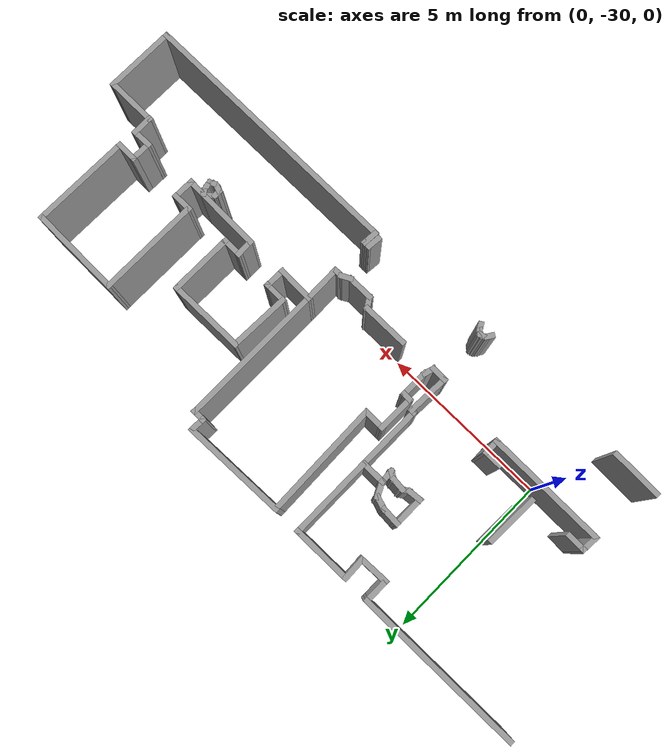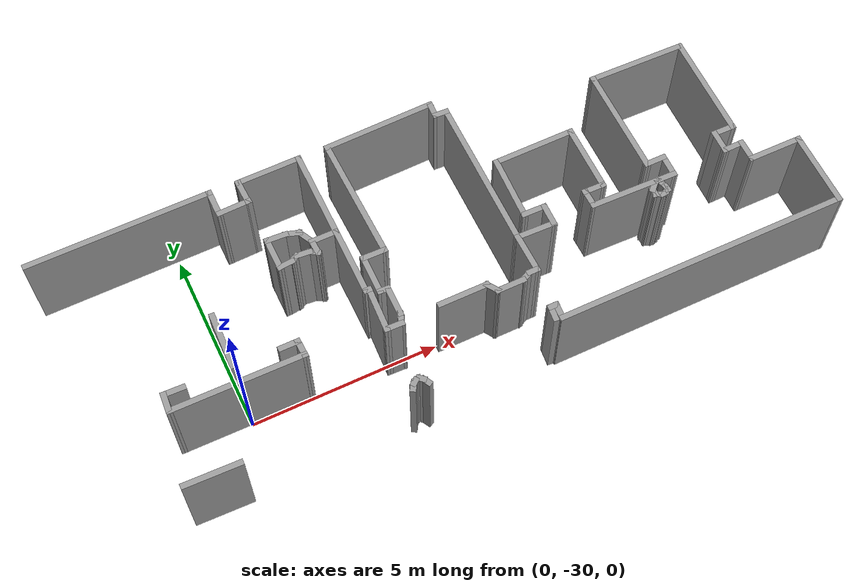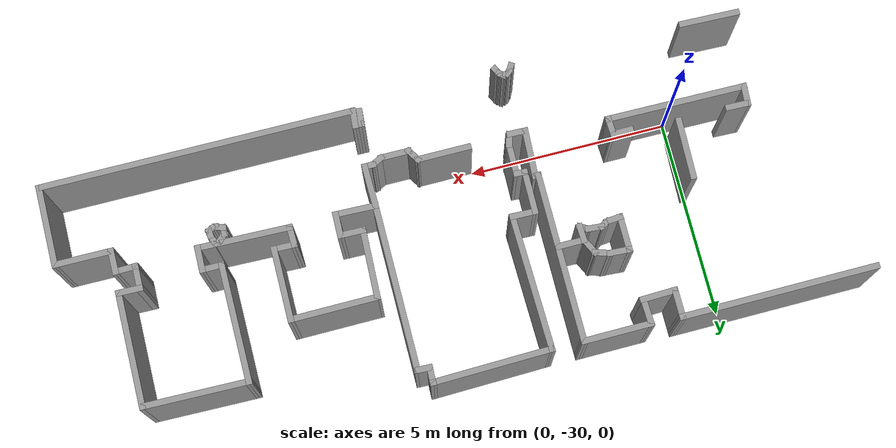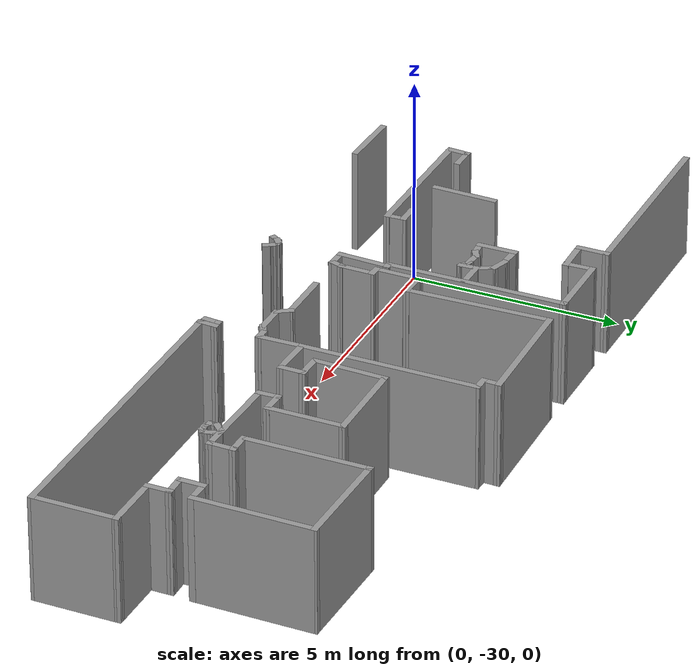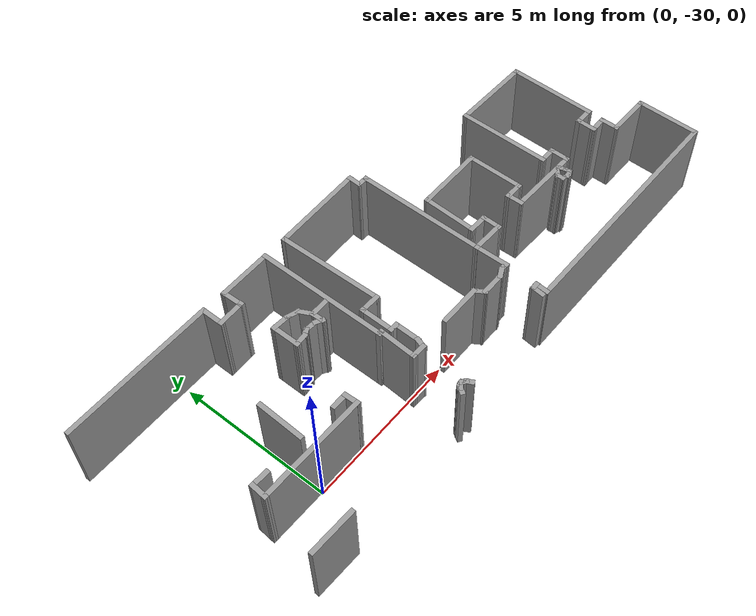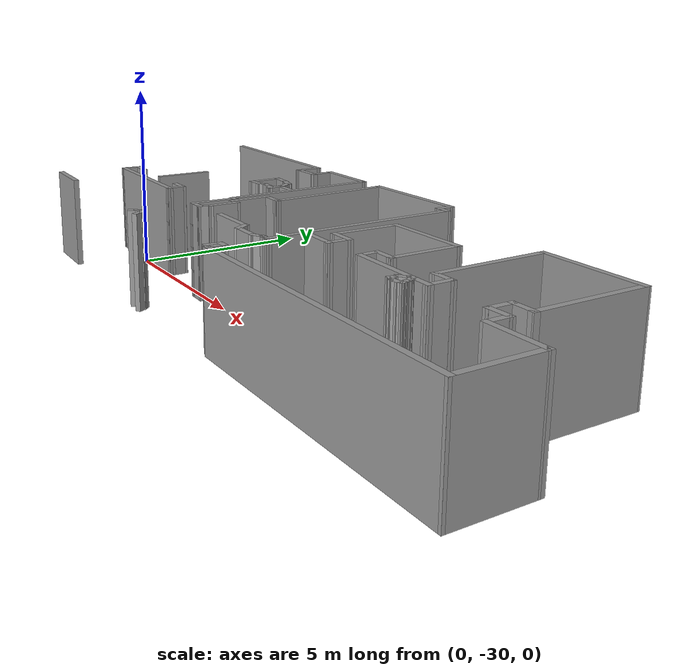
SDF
<sdf version="1.4">
 <model name="3ne_real">
  <pose>-14.229 -33.4428 0 0 -0 0</pose>
  <link name="Wall_111">
   <collision name="Wall_111_Collision">
    <geometry><box><size>0.471872 0.15 2.5</size></box></geometry>
    <pose>0 0 1.25 0 -0 0</pose>
   </collision>
   <visual name="Wall_111_Visual">
    <pose>0 0 1.25 0 -0 0</pose>
    <geometry><box><size>0.471872 0.15 2.5</size></box></geometry>
    <material>
     <script><uri>file://media/materials/scripts/gazebo.material</uri><name>Gazebo/Grey</name></script>
     <ambient>1 1 1 1</ambient>
    </material>
    <meta><layer>0</layer></meta>
   </visual>
   <pose>21.6685 1.9825 0 0 -0 1.47519</pose>
  </link>
  <link name="Wall_112">
   <collision name="Wall_112_Collision">
    <geometry><box><size>0.299526 0.15 2.5</size></box></geometry>
    <pose>0 0 1.25 0 -0 0</pose>
   </collision>
   <visual name="Wall_112_Visual">
    <pose>0 0 1.25 0 -0 0</pose>
    <geometry><box><size>0.299526 0.15 2.5</size></box></geometry>
    <material>
     <script><uri>file://media/materials/scripts/gazebo.material</uri><name>Gazebo/Grey</name></script>
     <ambient>1 1 1 1</ambient>
    </material>
    <meta><layer>0</layer></meta>
   </visual>
   <pose>21.7586 2.1423 0 0 -0 0</pose>
  </link>
  <link name="Wall_113">
   <collision name="Wall_113_Collision">
    <geometry><box><size>0.512541 0.15 2.5</size></box></geometry>
    <pose>0 0 1.25 0 -0 0</pose>
   </collision>
   <visual name="Wall_113_Visual">
    <pose>0 0 1.25 0 -0 0</pose>
    <geometry><box><size>0.512541 0.15 2.5</size></box></geometry>
    <material>
     <script><uri>file://media/materials/scripts/gazebo.material</uri><name>Gazebo/Grey</name></script>
     <ambient>1 1 1 1</ambient>
    </material>
    <meta><layer>0</layer></meta>
   </visual>
   <pose>21.8197 1.96154 0 0 -0 -1.64603</pose>
  </link>
  <link name="Wall_114">
   <collision name="Wall_114_Collision">
    <geometry><box><size>7.89707 0.15 2.5</size></box></geometry>
    <pose>0 0 1.25 0 -0 0</pose>
   </collision>
   <visual name="Wall_114_Visual">
    <pose>0 0 1.25 0 -0 0</pose>
    <geometry><box><size>7.89707 0.15 2.5</size></box></geometry>
    <material>
     <script><uri>file://media/materials/scripts/gazebo.material</uri><name>Gazebo/Grey</name></script>
     <ambient>1 1 1 1</ambient>
    </material>
    <meta><layer>0</layer></meta>
   </visual>
   <pose>25.6895 1.75849 0 0 -0 -0.003204</pose>
  </link>
  <link name="Wall_116">
   <collision name="Wall_116_Collision">
    <geometry><box><size>2.08803 0.15 2.5</size></box></geometry>
    <pose>0 0 1.25 0 -0 0</pose>
   </collision>
   <visual name="Wall_116_Visual">
    <pose>0 0 1.25 0 -0 0</pose>
    <geometry><box><size>2.08803 0.15 2.5</size></box></geometry>
    <material>
     <script><uri>file://media/materials/scripts/gazebo.material</uri><name>Gazebo/Grey</name></script>
     <ambient>1 1 1 1</ambient>
    </material>
    <meta><layer>0</layer></meta>
   </visual>
   <pose>29.5729 2.71504 0 0 -0 1.56059</pose>
  </link>
  <link name="Wall_117">
   <collision name="Wall_117_Collision">
    <geometry><box><size>1.51449 0.15 2.5</size></box></geometry>
    <pose>0 0 1.25 0 -0 0</pose>
   </collision>
   <visual name="Wall_117_Visual">
    <pose>0 0 1.25 0 -0 0</pose>
    <geometry><box><size>1.51449 0.15 2.5</size></box></geometry>
    <material>
     <script><uri>file://media/materials/scripts/gazebo.material</uri><name>Gazebo/Grey</name></script>
     <ambient>1 1 1 1</ambient>
    </material>
    <meta><layer>0</layer></meta>
   </visual>
   <pose>28.9005 3.68895 0 0 -0 3.13435</pose>
  </link>
  <link name="Wall_118">
   <collision name="Wall_118_Collision">
    <geometry><box><size>0.664144 0.15 2.5</size></box></geometry>
    <pose>0 0 1.25 0 -0 0</pose>
   </collision>
   <visual name="Wall_118_Visual">
    <pose>0 0 1.25 0 -0 0</pose>
    <geometry><box><size>0.664144 0.15 2.5</size></box></geometry>
    <material>
     <script><uri>file://media/materials/scripts/gazebo.material</uri><name>Gazebo/Grey</name></script>
     <ambient>1 1 1 1</ambient>
    </material>
    <meta><layer>0</layer></meta>
   </visual>
   <pose>28.2183 3.95097 0 0 -0 1.5708</pose>
  </link>
  <link name="Wall_120">
   <collision name="Wall_120_Collision">
    <geometry><box><size>0.634583 0.15 2.5</size></box></geometry>
    <pose>0 0 1.25 0 -0 0</pose>
   </collision>
   <visual name="Wall_120_Visual">
    <pose>0 0 1.25 0 -0 0</pose>
    <geometry><box><size>0.634583 0.15 2.5</size></box></geometry>
    <material>
     <script><uri>file://media/materials/scripts/gazebo.material</uri><name>Gazebo/Grey</name></script>
     <ambient>1 1 1 1</ambient>
    </material>
    <meta><layer>0</layer></meta>
   </visual>
   <pose>27.9761 4.2031 0 0 -0 -3.12119</pose>
  </link>
  <link name="Wall_121">
   <collision name="Wall_121_Collision">
    <geometry><box><size>0.694166 0.15 2.5</size></box></geometry>
    <pose>0 0 1.25 0 -0 0</pose>
   </collision>
   <visual name="Wall_121_Visual">
    <pose>0 0 1.25 0 -0 0</pose>
    <geometry><box><size>0.694166 0.15 2.5</size></box></geometry>
    <material>
     <script><uri>file://media/materials/scripts/gazebo.material</uri><name>Gazebo/Grey</name></script>
     <ambient>1 1 1 1</ambient>
    </material>
    <meta><layer>0</layer></meta>
   </visual>
   <pose>27.7388 4.47005 0 0 -0 1.55262</pose>
  </link>
  <link name="Wall_122">
   <collision name="Wall_122_Collision">
    <geometry><box><size>0.664999 0.15 2.5</size></box></geometry>
    <pose>0 0 1.25 0 -0 0</pose>
   </collision>
   <visual name="Wall_122_Visual">
    <pose>0 0 1.25 0 -0 0</pose>
    <geometry><box><size>0.664999 0.15 2.5</size></box></geometry>
    <material>
     <script><uri>file://media/materials/scripts/gazebo.material</uri><name>Gazebo/Grey</name></script>
     <ambient>1 1 1 1</ambient>
    </material>
    <meta><layer>0</layer></meta>
   </visual>
   <pose>28.0008 4.73701 0 0 -0 -0.019228</pose>
  </link>
  <link name="Wall_124">
   <collision name="Wall_124_Collision">
    <geometry><box><size>2.92899 0.15 2.5</size></box></geometry>
    <pose>0 0 1.25 0 -0 0</pose>
   </collision>
   <visual name="Wall_124_Visual">
    <pose>0 0 1.25 0 -0 0</pose>
    <geometry><box><size>2.92899 0.15 2.5</size></box></geometry>
    <material>
     <script><uri>file://media/materials/scripts/gazebo.material</uri><name>Gazebo/Grey</name></script>
     <ambient>1 1 1 1</ambient>
    </material>
    <meta><layer>0</layer></meta>
   </visual>
   <pose>28.2776 6.12125 0 0 -0 1.55656</pose>
  </link>
  <link name="Wall_125">
   <collision name="Wall_125_Collision">
    <geometry><box><size>2.70125 0.15 2.5</size></box></geometry>
    <pose>0 0 1.25 0 -0 0</pose>
   </collision>
   <visual name="Wall_125_Visual">
    <pose>0 0 1.25 0 -0 0</pose>
    <geometry><box><size>2.70125 0.15 2.5</size></box></geometry>
    <material>
     <script><uri>file://media/materials/scripts/gazebo.material</uri><name>Gazebo/Grey</name></script>
     <ambient>1 1 1 1</ambient>
    </material>
    <meta><layer>0</layer></meta>
   </visual>
   <pose>27.0219 7.53514 0 0 -0 3.12222</pose>
  </link>
  <link name="Wall_126">
   <collision name="Wall_126_Collision">
    <geometry><box><size>3.02725 0.15 2.5</size></box></geometry>
    <pose>0 0 1.25 0 -0 0</pose>
   </collision>
   <visual name="Wall_126_Visual">
    <pose>0 0 1.25 0 -0 0</pose>
    <geometry><box><size>3.02725 0.15 2.5</size></box></geometry>
    <material>
     <script><uri>file://media/materials/scripts/gazebo.material</uri><name>Gazebo/Grey</name></script>
     <ambient>1 1 1 1</ambient>
    </material>
    <meta><layer>0</layer></meta>
   </visual>
   <pose>25.7415 6.12125 0 0 -0 -1.57423</pose>
  </link>
  <link name="Wall_127">
   <collision name="Wall_127_Collision">
    <geometry><box><size>0.624595 0.15 2.5</size></box></geometry>
    <pose>0 0 1.25 0 -0 0</pose>
   </collision>
   <visual name="Wall_127_Visual">
    <pose>0 0 1.25 0 -0 0</pose>
    <geometry><box><size>0.624595 0.15 2.5</size></box></geometry>
    <material>
     <script><uri>file://media/materials/scripts/gazebo.material</uri><name>Gazebo/Grey</name></script>
     <ambient>1 1 1 1</ambient>
    </material>
    <meta><layer>0</layer></meta>
   </visual>
   <pose>25.9739 4.68263 0 0 -0 0</pose>
  </link>
  <link name="Wall_128">
   <collision name="Wall_128_Collision">
    <geometry><box><size>0.693896 0.15 2.5</size></box></geometry>
    <pose>0 0 1.25 0 -0 0</pose>
   </collision>
   <visual name="Wall_128_Visual">
    <pose>0 0 1.25 0 -0 0</pose>
    <geometry><box><size>0.693896 0.15 2.5</size></box></geometry>
    <material>
     <script><uri>file://media/materials/scripts/gazebo.material</uri><name>Gazebo/Grey</name></script>
     <ambient>1 1 1 1</ambient>
    </material>
    <meta><layer>0</layer></meta>
   </visual>
   <pose>26.2062 4.41073 0 0 -0 -1.58898</pose>
  </link>
  <link name="Wall_129">
   <collision name="Wall_129_Collision">
    <geometry><box><size>2.39522 0.15 2.5</size></box></geometry>
    <pose>0 0 1.25 0 -0 0</pose>
   </collision>
   <visual name="Wall_129_Visual">
    <pose>0 0 1.25 0 -0 0</pose>
    <geometry><box><size>2.39522 0.15 2.5</size></box></geometry>
    <material>
     <script><uri>file://media/materials/scripts/gazebo.material</uri><name>Gazebo/Grey</name></script>
     <ambient>1 1 1 1</ambient>
    </material>
    <meta><layer>0</layer></meta>
   </visual>
   <pose>25.0791 4.16849 0 0 -0 3.11517</pose>
  </link>
  <link name="Wall_130">
   <collision name="Wall_130_Collision">
    <geometry><box><size>0.585045 0.15 2.5</size></box></geometry>
    <pose>0 0 1.25 0 -0 0</pose>
   </collision>
   <visual name="Wall_130_Visual">
    <pose>0 0 1.25 0 -0 0</pose>
    <geometry><box><size>0.585045 0.15 2.5</size></box></geometry>
    <material>
     <script><uri>file://media/materials/scripts/gazebo.material</uri><name>Gazebo/Grey</name></script>
     <ambient>1 1 1 1</ambient>
    </material>
    <meta><layer>0</layer></meta>
   </visual>
   <pose>23.9519 4.41567 0 0 -0 1.59352</pose>
  </link>
  <link name="Wall_131">
   <collision name="Wall_131_Collision">
    <geometry><box><size>0.644765 0.15 2.5</size></box></geometry>
    <pose>0 0 1.25 0 -0 0</pose>
   </collision>
   <visual name="Wall_131_Visual">
    <pose>0 0 1.25 0 -0 0</pose>
    <geometry><box><size>0.644765 0.15 2.5</size></box></geometry>
    <material>
     <script><uri>file://media/materials/scripts/gazebo.material</uri><name>Gazebo/Grey</name></script>
     <ambient>1 1 1 1</ambient>
    </material>
    <meta><layer>0</layer></meta>
   </visual>
   <pose>24.1941 4.62825 0 0 -0 -0.019997</pose>
  </link>
  <link name="Wall_132">
   <collision name="Wall_132_Collision">
    <geometry><box><size>1.9001 0.15 2.5</size></box></geometry>
    <pose>0 0 1.25 0 -0 0</pose>
   </collision>
   <visual name="Wall_132_Visual">
    <pose>0 0 1.25 0 -0 0</pose>
    <geometry><box><size>1.9001 0.15 2.5</size></box></geometry>
    <material>
     <script><uri>file://media/materials/scripts/gazebo.material</uri><name>Gazebo/Grey</name></script>
     <ambient>1 1 1 1</ambient>
    </material>
    <meta><layer>0</layer></meta>
   </visual>
   <pose>24.4463 5.49834 0 0 -0 1.56515</pose>
  </link>
  <link name="Wall_133">
   <collision name="Wall_133_Collision">
    <geometry><box><size>2.26592 0.15 2.5</size></box></geometry>
    <pose>0 0 1.25 0 -0 0</pose>
   </collision>
   <visual name="Wall_133_Visual">
    <pose>0 0 1.25 0 -0 0</pose>
    <geometry><box><size>2.26592 0.15 2.5</size></box></geometry>
    <material>
     <script><uri>file://media/materials/scripts/gazebo.material</uri><name>Gazebo/Grey</name></script>
     <ambient>1 1 1 1</ambient>
    </material>
    <meta><layer>0</layer></meta>
   </visual>
   <pose>23.3933 6.36843 0 0 -0 -3.13692</pose>
  </link>
  <link name="Wall_134">
   <collision name="Wall_134_Collision">
    <geometry><box><size>1.81214 0.15 2.5</size></box></geometry>
    <pose>0 0 1.25 0 -0 0</pose>
   </collision>
   <visual name="Wall_134_Visual">
    <pose>0 0 1.25 0 -0 0</pose>
    <geometry><box><size>1.81214 0.15 2.5</size></box></geometry>
    <material>
     <script><uri>file://media/materials/scripts/gazebo.material</uri><name>Gazebo/Grey</name></script>
     <ambient>1 1 1 1</ambient>
    </material>
    <meta><layer>0</layer></meta>
   </visual>
   <pose>22.3057 5.53295 0 0 -0 -1.6065</pose>
  </link>
  <link name="Wall_135">
   <collision name="Wall_135_Collision">
    <geometry><box><size>0.703782 0.15 2.5</size></box></geometry>
    <pose>0 0 1.25 0 -0 0</pose>
   </collision>
   <visual name="Wall_135_Visual">
    <pose>0 0 1.25 0 -0 0</pose>
    <geometry><box><size>0.703782 0.15 2.5</size></box></geometry>
    <material>
     <script><uri>file://media/materials/scripts/gazebo.material</uri><name>Gazebo/Grey</name></script>
     <ambient>1 1 1 1</ambient>
    </material>
    <meta><layer>0</layer></meta>
   </visual>
   <pose>22.5528 4.69747 0 0 -0 -0.017855</pose>
  </link>
  <link name="Wall_136">
   <collision name="Wall_136_Collision">
    <geometry><box><size>0.674125 0.15 2.5</size></box></geometry>
    <pose>0 0 1.25 0 -0 0</pose>
   </collision>
   <visual name="Wall_136_Visual">
    <pose>0 0 1.25 0 -0 0</pose>
    <geometry><box><size>0.674125 0.15 2.5</size></box></geometry>
    <material>
     <script><uri>file://media/materials/scripts/gazebo.material</uri><name>Gazebo/Grey</name></script>
     <ambient>1 1 1 1</ambient>
    </material>
    <meta><layer>0</layer></meta>
   </visual>
   <pose>22.8247 4.43051 0 0 -0 -1.58966</pose>
  </link>
  <link name="Wall_138">
   <collision name="Wall_138_Collision">
    <geometry><box><size>1.1293 0.15 2.5</size></box></geometry>
    <pose>0 0 1.25 0 -0 0</pose>
   </collision>
   <visual name="Wall_138_Visual">
    <pose>0 0 1.25 0 -0 0</pose>
    <geometry><box><size>1.1293 0.15 2.5</size></box></geometry>
    <material>
     <script><uri>file://media/materials/scripts/gazebo.material</uri><name>Gazebo/Grey</name></script>
     <ambient>1 1 1 1</ambient>
    </material>
    <meta><layer>0</layer></meta>
   </visual>
   <pose>22.3304 4.18332 0 0 -0 3.1113</pose>
  </link>
  <link name="Wall_140">
   <collision name="Wall_140_Collision">
    <geometry><box><size>0.34576 0.15 2.5</size></box></geometry>
    <pose>0 0 1.25 0 -0 0</pose>
   </collision>
   <visual name="Wall_140_Visual">
    <pose>0 0 1.25 0 -0 0</pose>
    <geometry><box><size>0.34576 0.15 2.5</size></box></geometry>
    <material>
     <script><uri>file://media/materials/scripts/gazebo.material</uri><name>Gazebo/Grey</name></script>
     <ambient>1 1 1 1</ambient>
    </material>
    <meta><layer>0</layer></meta>
   </visual>
   <pose>25.5685 4.03006 0 0 -0 -2.35619</pose>
  </link>
  <link name="Wall_141">
   <collision name="Wall_141_Collision">
    <geometry><box><size>0.308198 0.15 2.5</size></box></geometry>
    <pose>0 0 1.25 0 -0 0</pose>
   </collision>
   <visual name="Wall_141_Visual">
    <pose>0 0 1.25 0 -0 0</pose>
    <geometry><box><size>0.308198 0.15 2.5</size></box></geometry>
    <material>
     <script><uri>file://media/materials/scripts/gazebo.material</uri><name>Gazebo/Grey</name></script>
     <ambient>1 1 1 1</ambient>
    </material>
    <meta><layer>0</layer></meta>
   </visual>
   <pose>25.4993 3.88176 0 0 -0 -1.5708</pose>
  </link>
  <link name="Wall_142">
   <collision name="Wall_142_Collision">
    <geometry><box><size>0.318956 0.15 2.5</size></box></geometry>
    <pose>0 0 1.25 0 -0 0</pose>
   </collision>
   <visual name="Wall_142_Visual">
    <pose>0 0 1.25 0 -0 0</pose>
    <geometry><box><size>0.318956 0.15 2.5</size></box></geometry>
    <material>
     <script><uri>file://media/materials/scripts/gazebo.material</uri><name>Gazebo/Grey</name></script>
     <ambient>1 1 1 1</ambient>
    </material>
    <meta><layer>0</layer></meta>
   </visual>
   <pose>25.5784 3.77299 0 0 -0 -0.358771</pose>
  </link>
  <link name="Wall_143">
   <collision name="Wall_143_Collision">
    <geometry><box><size>0.239534 0.15 2.5</size></box></geometry>
    <pose>0 0 1.25 0 -0 0</pose>
   </collision>
   <visual name="Wall_143_Visual">
    <pose>0 0 1.25 0 -0 0</pose>
    <geometry><box><size>0.239534 0.15 2.5</size></box></geometry>
    <material>
     <script><uri>file://media/materials/scripts/gazebo.material</uri><name>Gazebo/Grey</name></script>
     <ambient>1 1 1 1</ambient>
    </material>
    <meta><layer>0</layer></meta>
   </visual>
   <pose>25.702 3.74828 0 0 -0 0.110657</pose>
  </link>
  <link name="Wall_144">
   <collision name="Wall_144_Collision">
    <geometry><box><size>0.260544 0.15 2.5</size></box></geometry>
    <pose>0 0 1.25 0 -0 0</pose>
   </collision>
   <visual name="Wall_144_Visual">
    <pose>0 0 1.25 0 -0 0</pose>
    <geometry><box><size>0.260544 0.15 2.5</size></box></geometry>
    <material>
     <script><uri>file://media/materials/scripts/gazebo.material</uri><name>Gazebo/Grey</name></script>
     <ambient>1 1 1 1</ambient>
    </material>
    <meta><layer>0</layer></meta>
   </visual>
   <pose>25.7959 3.77794 0 0 -0 0.463648</pose>
  </link>
  <link name="Wall_145">
   <collision name="Wall_145_Collision">
    <geometry><box><size>0.258761 0.15 2.5</size></box></geometry>
    <pose>0 0 1.25 0 -0 0</pose>
   </collision>
   <visual name="Wall_145_Visual">
    <pose>0 0 1.25 0 -0 0</pose>
    <geometry><box><size>0.258761 0.15 2.5</size></box></geometry>
    <material>
     <script><uri>file://media/materials/scripts/gazebo.material</uri><name>Gazebo/Grey</name></script>
     <ambient>1 1 1 1</ambient>
    </material>
    <meta><layer>0</layer></meta>
   </visual>
   <pose>25.8404 3.85704 0 0 -0 1.66146</pose>
  </link>
  <link name="Wall_146">
   <collision name="Wall_146_Collision">
    <geometry><box><size>0.315743 0.15 2.5</size></box></geometry>
    <pose>0 0 1.25 0 -0 0</pose>
   </collision>
   <visual name="Wall_146_Visual">
    <pose>0 0 1.25 0 -0 0</pose>
    <geometry><box><size>0.315743 0.15 2.5</size></box></geometry>
    <material>
     <script><uri>file://media/materials/scripts/gazebo.material</uri><name>Gazebo/Grey</name></script>
     <ambient>1 1 1 1</ambient>
    </material>
    <meta><layer>0</layer></meta>
   </visual>
   <pose>25.8107 3.99052 0 0 -0 1.87368</pose>
  </link>
  <link name="Wall_147">
   <collision name="Wall_147_Collision">
    <geometry><box><size>0.221299 0.15 2.5</size></box></geometry>
    <pose>0 0 1.25 0 -0 0</pose>
   </collision>
   <visual name="Wall_147_Visual">
    <pose>0 0 1.25 0 -0 0</pose>
    <geometry><box><size>0.221299 0.15 2.5</size></box></geometry>
    <material>
     <script><uri>file://media/materials/scripts/gazebo.material</uri><name>Gazebo/Grey</name></script>
     <ambient>1 1 1 1</ambient>
    </material>
    <meta><layer>0</layer></meta>
   </visual>
   <pose>25.7662 4.09928 0 0 -0 2.1588</pose>
  </link>
  <link name="Wall_149">
   <collision name="Wall_149_Collision">
    <geometry><box><size>4.24333 0.15 2.5</size></box></geometry>
    <pose>0 0 1.25 0 -0 0</pose>
   </collision>
   <visual name="Wall_149_Visual">
    <pose>0 0 1.25 0 -0 0</pose>
    <geometry><box><size>4.24333 0.15 2.5</size></box></geometry>
    <material>
     <script><uri>file://media/materials/scripts/gazebo.material</uri><name>Gazebo/Grey</name></script>
     <ambient>1 1 1 1</ambient>
    </material>
    <meta><layer>0</layer></meta>
   </visual>
   <pose>21.8441 6.24482 0 0 -0 1.56927</pose>
  </link>
  <link name="Wall_150">
   <collision name="Wall_150_Collision">
    <geometry><box><size>0.445633 0.15 2.5</size></box></geometry>
    <pose>0 0 1.25 0 -0 0</pose>
   </collision>
   <visual name="Wall_150_Visual">
    <pose>0 0 1.25 0 -0 0</pose>
    <geometry><box><size>0.445633 0.15 2.5</size></box></geometry>
    <material>
     <script><uri>file://media/materials/scripts/gazebo.material</uri><name>Gazebo/Grey</name></script>
     <ambient>1 1 1 1</ambient>
    </material>
    <meta><layer>0</layer></meta>
   </visual>
   <pose>21.6994 8.29717 0 0 -0 3.10315</pose>
  </link>
  <link name="Wall_152">
   <collision name="Wall_152_Collision">
    <geometry><box><size>0.514034 0.15 2.5</size></box></geometry>
    <pose>0 0 1.25 0 -0 0</pose>
   </collision>
   <visual name="Wall_152_Visual">
    <pose>0 0 1.25 0 -0 0</pose>
    <geometry><box><size>0.514034 0.15 2.5</size></box></geometry>
    <material>
     <script><uri>file://media/materials/scripts/gazebo.material</uri><name>Gazebo/Grey</name></script>
     <ambient>1 1 1 1</ambient>
    </material>
    <meta><layer>0</layer></meta>
   </visual>
   <pose>21.5572 8.48478 0 0 -0 1.53956</pose>
  </link>
  <link name="Wall_153">
   <collision name="Wall_153_Collision">
    <geometry><box><size>3.06165 0.15 2.5</size></box></geometry>
    <pose>0 0 1.25 0 -0 0</pose>
   </collision>
   <visual name="Wall_153_Visual">
    <pose>0 0 1.25 0 -0 0</pose>
    <geometry><box><size>3.06165 0.15 2.5</size></box></geometry>
    <material>
     <script><uri>file://media/materials/scripts/gazebo.material</uri><name>Gazebo/Grey</name></script>
     <ambient>1 1 1 1</ambient>
    </material>
    <meta><layer>0</layer></meta>
   </visual>
   <pose>20.1075 8.6326 0 0 -0 -3.11816</pose>
  </link>
  <link name="Wall_154">
   <collision name="Wall_154_Collision">
    <geometry><box><size>3.47114 0.15 2.5</size></box></geometry>
    <pose>0 0 1.25 0 -0 0</pose>
   </collision>
   <visual name="Wall_154_Visual">
    <pose>0 0 1.25 0 -0 0</pose>
    <geometry><box><size>3.47114 0.15 2.5</size></box></geometry>
    <material>
     <script><uri>file://media/materials/scripts/gazebo.material</uri><name>Gazebo/Grey</name></script>
     <ambient>1 1 1 1</ambient>
    </material>
    <meta><layer>0</layer></meta>
   </visual>
   <pose>18.6919 6.93839 0 0 -0 -1.54683</pose>
  </link>
  <link name="Wall_155">
   <collision name="Wall_155_Collision">
    <geometry><box><size>0.707618 0.15 2.5</size></box></geometry>
    <pose>0 0 1.25 0 -0 0</pose>
   </collision>
   <visual name="Wall_155_Visual">
    <pose>0 0 1.25 0 -0 0</pose>
    <geometry><box><size>0.707618 0.15 2.5</size></box></geometry>
    <material>
     <script><uri>file://media/materials/scripts/gazebo.material</uri><name>Gazebo/Grey</name></script>
     <ambient>1 1 1 1</ambient>
    </material>
    <meta><layer>0</layer></meta>
   </visual>
   <pose>18.4531 5.28398 0 0 -0 3.12119</pose>
  </link>
  <link name="Wall_157">
   <collision name="Wall_157_Collision">
    <geometry><box><size>1.15067 0.15 2.5</size></box></geometry>
    <pose>0 0 1.25 0 -0 0</pose>
   </collision>
   <visual name="Wall_157_Visual">
    <pose>0 0 1.25 0 -0 0</pose>
    <geometry><box><size>1.15067 0.15 2.5</size></box></geometry>
    <material>
     <script><uri>file://media/materials/scripts/gazebo.material</uri><name>Gazebo/Grey</name></script>
     <ambient>1 1 1 1</ambient>
    </material>
    <meta><layer>0</layer></meta>
   </visual>
   <pose>18.1688 4.78937 0 0 -0 -1.58216</pose>
  </link>
  <link name="Wall_158">
   <collision name="Wall_158_Collision">
    <geometry><box><size>0.354669 0.15 2.5</size></box></geometry>
    <pose>0 0 1.25 0 -0 0</pose>
   </collision>
   <visual name="Wall_158_Visual">
    <pose>0 0 1.25 0 -0 0</pose>
    <geometry><box><size>0.354669 0.15 2.5</size></box></geometry>
    <material>
     <script><uri>file://media/materials/scripts/gazebo.material</uri><name>Gazebo/Grey</name></script>
     <ambient>1 1 1 1</ambient>
    </material>
    <meta><layer>0</layer></meta>
   </visual>
   <pose>18.2655 4.28338 0 0 -0 -0.055499</pose>
  </link>
  <link name="Wall_159">
   <collision name="Wall_159_Collision">
    <geometry><box><size>0.88917 0.15 2.5</size></box></geometry>
    <pose>0 0 1.25 0 -0 0</pose>
   </collision>
   <visual name="Wall_159_Visual">
    <pose>0 0 1.25 0 -0 0</pose>
    <geometry><box><size>0.88917 0.15 2.5</size></box></geometry>
    <material>
     <script><uri>file://media/materials/scripts/gazebo.material</uri><name>Gazebo/Grey</name></script>
     <ambient>1 1 1 1</ambient>
    </material>
    <meta><layer>0</layer></meta>
   </visual>
   <pose>18.3621 3.90815 0 0 -0 -1.58618</pose>
  </link>
  <link name="Wall_160">
   <collision name="Wall_160_Collision">
    <geometry><box><size>0.412508 0.15 2.5</size></box></geometry>
    <pose>0 0 1.25 0 -0 0</pose>
   </collision>
   <visual name="Wall_160_Visual">
    <pose>0 0 1.25 0 -0 0</pose>
    <geometry><box><size>0.412508 0.15 2.5</size></box></geometry>
    <material>
     <script><uri>file://media/materials/scripts/gazebo.material</uri><name>Gazebo/Grey</name></script>
     <ambient>1 1 1 1</ambient>
    </material>
    <meta><layer>0</layer></meta>
   </visual>
   <pose>18.3166 3.41354 0 0 -0 -1.87885</pose>
  </link>
  <link name="Wall_161">
   <collision name="Wall_161_Collision">
    <geometry><box><size>0.536764 0.15 2.5</size></box></geometry>
    <pose>0 0 1.25 0 -0 0</pose>
   </collision>
   <visual name="Wall_161_Visual">
    <pose>0 0 1.25 0 -0 0</pose>
    <geometry><box><size>0.536764 0.15 2.5</size></box></geometry>
    <material>
     <script><uri>file://media/materials/scripts/gazebo.material</uri><name>Gazebo/Grey</name></script>
     <ambient>1 1 1 1</ambient>
    </material>
    <meta><layer>0</layer></meta>
   </visual>
   <pose>18.0835 3.29415 0 0 -0 3.11219</pose>
  </link>
  <link name="Wall_162">
   <collision name="Wall_162_Collision">
    <geometry><box><size>1.29983 0.15 2.5</size></box></geometry>
    <pose>0 0 1.25 0 -0 0</pose>
   </collision>
   <visual name="Wall_162_Visual">
    <pose>0 0 1.25 0 -0 0</pose>
    <geometry><box><size>1.29983 0.15 2.5</size></box></geometry>
    <material>
     <script><uri>file://media/materials/scripts/gazebo.material</uri><name>Gazebo/Grey</name></script>
     <ambient>1 1 1 1</ambient>
    </material>
    <meta><layer>0</layer></meta>
   </visual>
   <pose>17.9187 3.87404 0 0 -0 1.52133</pose>
  </link>
  <link name="Wall_163">
   <collision name="Wall_163_Collision">
    <geometry><box><size>0.229593 0.15 2.5</size></box></geometry>
    <pose>0 0 1.25 0 -0 0</pose>
   </collision>
   <visual name="Wall_163_Visual">
    <pose>0 0 1.25 0 -0 0</pose>
    <geometry><box><size>0.229593 0.15 2.5</size></box></geometry>
    <material>
     <script><uri>file://media/materials/scripts/gazebo.material</uri><name>Gazebo/Grey</name></script>
     <ambient>1 1 1 1</ambient>
    </material>
    <meta><layer>0</layer></meta>
   </visual>
   <pose>17.9073 4.44825 0 0 -0 3.14159</pose>
  </link>
  <link name="Wall_164">
   <collision name="Wall_164_Collision">
    <geometry><box><size>4.3116 0.15 2.5</size></box></geometry>
    <pose>0 0 1.25 0 -0 0</pose>
   </collision>
   <visual name="Wall_164_Visual">
    <pose>0 0 1.25 0 -0 0</pose>
    <geometry><box><size>4.3116 0.15 2.5</size></box></geometry>
    <material>
     <script><uri>file://media/materials/scripts/gazebo.material</uri><name>Gazebo/Grey</name></script>
     <ambient>1 1 1 1</ambient>
    </material>
    <meta><layer>0</layer></meta>
   </visual>
   <pose>17.8675 6.52905 0 0 -0 1.5708</pose>
  </link>
  <link name="Wall_166">
   <collision name="Wall_166_Collision">
    <geometry><box><size>1.15081 0.15 2.5</size></box></geometry>
    <pose>0 0 1.25 0 -0 0</pose>
   </collision>
   <visual name="Wall_166_Visual">
    <pose>0 0 1.25 0 -0 0</pose>
    <geometry><box><size>1.15081 0.15 2.5</size></box></geometry>
    <material>
     <script><uri>file://media/materials/scripts/gazebo.material</uri><name>Gazebo/Grey</name></script>
     <ambient>1 1 1 1</ambient>
    </material>
    <meta><layer>0</layer></meta>
   </visual>
   <pose>21.8498 3.69782 0 0 -0 -1.55321</pose>
  </link>
  <link name="Wall_167">
   <collision name="Wall_167_Collision">
    <geometry><box><size>0.354669 0.15 2.5</size></box></geometry>
    <pose>0 0 1.25 0 -0 0</pose>
   </collision>
   <visual name="Wall_167_Visual">
    <pose>0 0 1.25 0 -0 0</pose>
    <geometry><box><size>0.354669 0.15 2.5</size></box></geometry>
    <material>
     <script><uri>file://media/materials/scripts/gazebo.material</uri><name>Gazebo/Grey</name></script>
     <ambient>1 1 1 1</ambient>
    </material>
    <meta><layer>0</layer></meta>
   </visual>
   <pose>21.7562 3.1975 0 0 -0 3.14159</pose>
  </link>
  <link name="Wall_168">
   <collision name="Wall_168_Collision">
    <geometry><box><size>0.404252 0.15 2.5</size></box></geometry>
    <pose>0 0 1.25 0 -0 0</pose>
   </collision>
   <visual name="Wall_168_Visual">
    <pose>0 0 1.25 0 -0 0</pose>
    <geometry><box><size>0.404252 0.15 2.5</size></box></geometry>
    <material>
     <script><uri>file://media/materials/scripts/gazebo.material</uri><name>Gazebo/Grey</name></script>
     <ambient>1 1 1 1</ambient>
    </material>
    <meta><layer>0</layer></meta>
   </visual>
   <pose>21.5402 3.14065 0 0 -0 -2.67794</pose>
  </link>
  <link name="Wall_169">
   <collision name="Wall_169_Collision">
    <geometry><box><size>0.83223 0.15 2.5</size></box></geometry>
    <pose>0 0 1.25 0 -0 0</pose>
   </collision>
   <visual name="Wall_169_Visual">
    <pose>0 0 1.25 0 -0 0</pose>
    <geometry><box><size>0.83223 0.15 2.5</size></box></geometry>
    <material>
     <script><uri>file://media/materials/scripts/gazebo.material</uri><name>Gazebo/Grey</name></script>
     <ambient>1 1 1 1</ambient>
    </material>
    <meta><layer>0</layer></meta>
   </visual>
   <pose>21.0854 3.08379 0 0 -0 3.14159</pose>
  </link>
  <link name="Wall_170">
   <collision name="Wall_170_Collision">
    <geometry><box><size>0.462223 0.15 2.5</size></box></geometry>
    <pose>0 0 1.25 0 -0 0</pose>
   </collision>
   <visual name="Wall_170_Visual">
    <pose>0 0 1.25 0 -0 0</pose>
    <geometry><box><size>0.462223 0.15 2.5</size></box></geometry>
    <material>
     <script><uri>file://media/materials/scripts/gazebo.material</uri><name>Gazebo/Grey</name></script>
     <ambient>1 1 1 1</ambient>
    </material>
    <meta><layer>0</layer></meta>
   </visual>
   <pose>20.659 3.21455 0 0 -0 2.1487</pose>
  </link>
  <link name="Wall_171">
   <collision name="Wall_171_Collision">
    <geometry><box><size>1.40075 0.15 2.5</size></box></geometry>
    <pose>0 0 1.25 0 -0 0</pose>
   </collision>
   <visual name="Wall_171_Visual">
    <pose>0 0 1.25 0 -0 0</pose>
    <geometry><box><size>1.40075 0.15 2.5</size></box></geometry>
    <material>
     <script><uri>file://media/materials/scripts/gazebo.material</uri><name>Gazebo/Grey</name></script>
     <ambient>1 1 1 1</ambient>
    </material>
    <meta><layer>0</layer></meta>
   </visual>
   <pose>19.9483 3.34531 0 0 -0 3.14159</pose>
  </link>
  <link name="Wall_173">
   <collision name="Wall_173_Collision">
    <geometry><box><size>1.79876 0.15 2.5</size></box></geometry>
    <pose>0 0 1.25 0 -0 0</pose>
   </collision>
   <visual name="Wall_173_Visual">
    <pose>0 0 1.25 0 -0 0</pose>
    <geometry><box><size>1.79876 0.15 2.5</size></box></geometry>
    <material>
     <script><uri>file://media/materials/scripts/gazebo.material</uri><name>Gazebo/Grey</name></script>
     <ambient>1 1 1 1</ambient>
    </material>
    <meta><layer>0</layer></meta>
   </visual>
   <pose>17.0431 8.60417 0 0 -0 -3.1347</pose>
  </link>
  <link name="Wall_174">
   <collision name="Wall_174_Collision">
    <geometry><box><size>0.753065 0.15 2.5</size></box></geometry>
    <pose>0 0 1.25 0 -0 0</pose>
   </collision>
   <visual name="Wall_174_Visual">
    <pose>0 0 1.25 0 -0 0</pose>
    <geometry><box><size>0.753065 0.15 2.5</size></box></geometry>
    <material>
     <script><uri>file://media/materials/scripts/gazebo.material</uri><name>Gazebo/Grey</name></script>
     <ambient>1 1 1 1</ambient>
    </material>
    <meta><layer>0</layer></meta>
   </visual>
   <pose>16.2302 8.29717 0 0 -0 -1.53308</pose>
  </link>
  <link name="Wall_175">
   <collision name="Wall_175_Collision">
    <geometry><box><size>0.934894 0.15 2.5</size></box></geometry>
    <pose>0 0 1.25 0 -0 0</pose>
   </collision>
   <visual name="Wall_175_Visual">
    <pose>0 0 1.25 0 -0 0</pose>
    <geometry><box><size>0.934894 0.15 2.5</size></box></geometry>
    <material>
     <script><uri>file://media/materials/scripts/gazebo.material</uri><name>Gazebo/Grey</name></script>
     <ambient>1 1 1 1</ambient>
    </material>
    <meta><layer>0</layer></meta>
   </visual>
   <pose>15.8606 7.98448 0 0 -0 -3.11261</pose>
  </link>
  <link name="Wall_176">
   <collision name="Wall_176_Collision">
    <geometry><box><size>0.809489 0.15 2.5</size></box></geometry>
    <pose>0 0 1.25 0 -0 0</pose>
   </collision>
   <visual name="Wall_176_Visual">
    <pose>0 0 1.25 0 -0 0</pose>
    <geometry><box><size>0.809489 0.15 2.5</size></box></geometry>
    <material>
     <script><uri>file://media/materials/scripts/gazebo.material</uri><name>Gazebo/Grey</name></script>
     <ambient>1 1 1 1</ambient>
    </material>
    <meta><layer>0</layer></meta>
   </visual>
   <pose>15.457 8.30285 0 0 -0 1.5708</pose>
  </link>
  <link name="Wall_178">
   <collision name="Wall_178_Collision">
    <geometry><box><size>4.95984 0.15 2.5</size></box></geometry>
    <pose>0 0 1.25 0 -0 0</pose>
   </collision>
   <visual name="Wall_178_Visual">
    <pose>0 0 1.25 0 -0 0</pose>
    <geometry><box><size>4.95984 0.15 2.5</size></box></geometry>
    <material>
     <script><uri>file://media/materials/scripts/gazebo.material</uri><name>Gazebo/Grey</name></script>
     <ambient>1 1 1 1</ambient>
    </material>
    <meta><layer>0</layer></meta>
   </visual>
   <pose>13.0521 8.62122 0 0 -0 -3.13686</pose>
  </link>
  <link name="Wall_501">
   <collision name="Wall_501_Collision">
    <geometry><box><size>0.303946 0.15 2.5</size></box></geometry>
    <pose>0 0 1.25 0 -0 0</pose>
   </collision>
   <visual name="Wall_501_Visual">
    <pose>0 0 1.25 0 -0 0</pose>
    <geometry><box><size>0.303946 0.15 2.5</size></box></geometry>
    <material>
     <script><uri>file://media/materials/scripts/gazebo.material</uri><name>Gazebo/Grey</name></script>
     <ambient>1 1 1 1</ambient>
    </material>
    <meta><layer>0</layer></meta>
   </visual>
   <pose>18.1668 1.6762 0 0 -0 2.07789</pose>
  </link>
  <link name="Wall_502">
   <collision name="Wall_502_Collision">
    <geometry><box><size>0.266783 0.15 2.5</size></box></geometry>
    <pose>0 0 1.25 0 -0 0</pose>
   </collision>
   <visual name="Wall_502_Visual">
    <pose>0 0 1.25 0 -0 0</pose>
    <geometry><box><size>0.266783 0.15 2.5</size></box></geometry>
    <material>
     <script><uri>file://media/materials/scripts/gazebo.material</uri><name>Gazebo/Grey</name></script>
     <ambient>1 1 1 1</ambient>
    </material>
    <meta><layer>0</layer></meta>
   </visual>
   <pose>18.0846 1.78086 0 0 -0 2.44685</pose>
  </link>
  <link name="Wall_503">
   <collision name="Wall_503_Collision">
    <geometry><box><size>0.240953 0.15 2.5</size></box></geometry>
    <pose>0 0 1.25 0 -0 0</pose>
   </collision>
   <visual name="Wall_503_Visual">
    <pose>0 0 1.25 0 -0 0</pose>
    <geometry><box><size>0.240953 0.15 2.5</size></box></geometry>
    <material>
     <script><uri>file://media/materials/scripts/gazebo.material</uri><name>Gazebo/Grey</name></script>
     <ambient>1 1 1 1</ambient>
    </material>
    <meta><layer>0</layer></meta>
   </visual>
   <pose>17.9949 1.81077 0 0 -0 -2.97644</pose>
  </link>
  <link name="Wall_504">
   <collision name="Wall_504_Collision">
    <geometry><box><size>0.245743 0.15 2.5</size></box></geometry>
    <pose>0 0 1.25 0 -0 0</pose>
   </collision>
   <visual name="Wall_504_Visual">
    <pose>0 0 1.25 0 -0 0</pose>
    <geometry><box><size>0.245743 0.15 2.5</size></box></geometry>
    <material>
     <script><uri>file://media/materials/scripts/gazebo.material</uri><name>Gazebo/Grey</name></script>
     <ambient>1 1 1 1</ambient>
    </material>
    <meta><layer>0</layer></meta>
   </visual>
   <pose>17.9126 1.77339 0 0 -0 -2.46685</pose>
  </link>
  <link name="Wall_505">
   <collision name="Wall_505_Collision">
    <geometry><box><size>0.291062 0.15 2.5</size></box></geometry>
    <pose>0 0 1.25 0 -0 0</pose>
   </collision>
   <visual name="Wall_505_Visual">
    <pose>0 0 1.25 0 -0 0</pose>
    <geometry><box><size>0.291062 0.15 2.5</size></box></geometry>
    <material>
     <script><uri>file://media/materials/scripts/gazebo.material</uri><name>Gazebo/Grey</name></script>
     <ambient>1 1 1 1</ambient>
    </material>
    <meta><layer>0</layer></meta>
   </visual>
   <pose>17.8379 1.68367 0 0 -0 -2.1294</pose>
  </link>
  <link name="Wall_508">
   <collision name="Wall_508_Collision">
    <geometry><box><size>3.55932 0.15 2.5</size></box></geometry>
    <pose>0 0 1.25 0 -0 0</pose>
   </collision>
   <visual name="Wall_508_Visual">
    <pose>0 0 1.25 0 -0 0</pose>
    <geometry><box><size>3.55932 0.15 2.5</size></box></geometry>
    <material>
     <script><uri>file://media/materials/scripts/gazebo.material</uri><name>Gazebo/Grey</name></script>
     <ambient>1 1 1 1</ambient>
    </material>
    <meta><layer>0</layer></meta>
   </visual>
   <pose>14.1605 3.53668 0 0 -0 -0.008772</pose>
  </link>
  <link name="Wall_509">
   <collision name="Wall_509_Collision">
    <geometry><box><size>0.539054 0.15 2.5</size></box></geometry>
    <pose>0 0 1.25 0 -0 0</pose>
   </collision>
   <visual name="Wall_509_Visual">
    <pose>0 0 1.25 0 -0 0</pose>
    <geometry><box><size>0.539054 0.15 2.5</size></box></geometry>
    <material>
     <script><uri>file://media/materials/scripts/gazebo.material</uri><name>Gazebo/Grey</name></script>
     <ambient>1 1 1 1</ambient>
    </material>
    <meta><layer>0</layer></meta>
   </visual>
   <pose>15.8576 3.71611 0 0 -0 1.60924</pose>
  </link>
  <link name="Wall_510">
   <collision name="Wall_510_Collision">
    <geometry><box><size>0.583625 0.15 2.5</size></box></geometry>
    <pose>0 0 1.25 0 -0 0</pose>
   </collision>
   <visual name="Wall_510_Visual">
    <pose>0 0 1.25 0 -0 0</pose>
    <geometry><box><size>0.583625 0.15 2.5</size></box></geometry>
    <material>
     <script><uri>file://media/materials/scripts/gazebo.material</uri><name>Gazebo/Grey</name></script>
     <ambient>1 1 1 1</ambient>
    </material>
    <meta><layer>0</layer></meta>
   </visual>
   <pose>15.6333 3.91049 0 0 -0 3.14159</pose>
  </link>
  <link name="Wall_512">
   <collision name="Wall_512_Collision">
    <geometry><box><size>0.584655 0.15 2.5</size></box></geometry>
    <pose>0 0 1.25 0 -0 0</pose>
   </collision>
   <visual name="Wall_512_Visual">
    <pose>0 0 1.25 0 -0 0</pose>
    <geometry><box><size>0.584655 0.15 2.5</size></box></geometry>
    <material>
     <script><uri>file://media/materials/scripts/gazebo.material</uri><name>Gazebo/Grey</name></script>
     <ambient>1 1 1 1</ambient>
    </material>
    <meta><layer>0</layer></meta>
   </visual>
   <pose>12.4708 3.76844 0 0 -0 1.50194</pose>
  </link>
  <link name="Wall_513">
   <collision name="Wall_513_Collision">
    <geometry><box><size>0.628716 0.15 2.5</size></box></geometry>
    <pose>0 0 1.25 0 -0 0</pose>
   </collision>
   <visual name="Wall_513_Visual">
    <pose>0 0 1.25 0 -0 0</pose>
    <geometry><box><size>0.628716 0.15 2.5</size></box></geometry>
    <material>
     <script><uri>file://media/materials/scripts/gazebo.material</uri><name>Gazebo/Grey</name></script>
     <ambient>1 1 1 1</ambient>
    </material>
    <meta><layer>0</layer></meta>
   </visual>
   <pose>12.725 3.97778 0 0 -0 -0.03124</pose>
  </link>
  <link name="Wall_515">
   <collision name="Wall_515_Collision">
    <geometry><box><size>1.5712 0.15 2.5</size></box></geometry>
    <pose>0 0 1.25 0 -0 0</pose>
   </collision>
   <visual name="Wall_515_Visual">
    <pose>0 0 1.25 0 -0 0</pose>
    <geometry><box><size>1.5712 0.15 2.5</size></box></geometry>
    <material>
     <script><uri>file://media/materials/scripts/gazebo.material</uri><name>Gazebo/Grey</name></script>
     <ambient>1 1 1 1</ambient>
    </material>
    <meta><layer>0</layer></meta>
   </visual>
   <pose>14.2427 4.6955 0 0 -0 -1.60237</pose>
  </link>
  <link name="Wall_524">
   <collision name="Wall_524_Collision">
    <geometry><box><size>0.778008 0.15 2.5</size></box></geometry>
    <pose>0 0 1.25 0 -0 0</pose>
   </collision>
   <visual name="Wall_524_Visual">
    <pose>0 0 1.25 0 -0 0</pose>
    <geometry><box><size>0.778008 0.15 2.5</size></box></geometry>
    <material>
     <script><uri>file://media/materials/scripts/gazebo.material</uri><name>Gazebo/Grey</name></script>
     <ambient>1 1 1 1</ambient>
    </material>
    <meta><layer>0</layer></meta>
   </visual>
   <pose>17.5397 6.25805 0 0 -0 3.14159</pose>
  </link>
  <link name="Wall_525">
   <collision name="Wall_525_Collision">
    <geometry><box><size>0.493909 0.15 2.5</size></box></geometry>
    <pose>0 0 1.25 0 -0 0</pose>
   </collision>
   <visual name="Wall_525_Visual">
    <pose>0 0 1.25 0 -0 0</pose>
    <geometry><box><size>0.493909 0.15 2.5</size></box></geometry>
    <material>
     <script><uri>file://media/materials/scripts/gazebo.material</uri><name>Gazebo/Grey</name></script>
     <ambient>1 1 1 1</ambient>
    </material>
    <meta><layer>0</layer></meta>
   </visual>
   <pose>17.2332 6.08609 0 0 -0 -1.52734</pose>
  </link>
  <link name="Wall_526">
   <collision name="Wall_526_Collision">
    <geometry><box><size>0.357728 0.15 2.5</size></box></geometry>
    <pose>0 0 1.25 0 -0 0</pose>
   </collision>
   <visual name="Wall_526_Visual">
    <pose>0 0 1.25 0 -0 0</pose>
    <geometry><box><size>0.357728 0.15 2.5</size></box></geometry>
    <material>
     <script><uri>file://media/materials/scripts/gazebo.material</uri><name>Gazebo/Grey</name></script>
     <ambient>1 1 1 1</ambient>
    </material>
    <meta><layer>0</layer></meta>
   </visual>
   <pose>17.151 5.96647 0 0 -0 2.61352</pose>
  </link>
  <link name="Wall_527">
   <collision name="Wall_527_Collision">
    <geometry><box><size>0.480313 0.15 2.5</size></box></geometry>
    <pose>0 0 1.25 0 -0 0</pose>
   </collision>
   <visual name="Wall_527_Visual">
    <pose>0 0 1.25 0 -0 0</pose>
    <geometry><box><size>0.480313 0.15 2.5</size></box></geometry>
    <material>
     <script><uri>file://media/materials/scripts/gazebo.material</uri><name>Gazebo/Grey</name></script>
     <ambient>1 1 1 1</ambient>
    </material>
    <meta><layer>0</layer></meta>
   </visual>
   <pose>16.8968 6.03376 0 0 -0 3.05093</pose>
  </link>
  <link name="Wall_528">
   <collision name="Wall_528_Collision">
    <geometry><box><size>0.337355 0.15 2.5</size></box></geometry>
    <pose>0 0 1.25 0 -0 0</pose>
   </collision>
   <visual name="Wall_528_Visual">
    <pose>0 0 1.25 0 -0 0</pose>
    <geometry><box><size>0.337355 0.15 2.5</size></box></geometry>
    <material>
     <script><uri>file://media/materials/scripts/gazebo.material</uri><name>Gazebo/Grey</name></script>
     <ambient>1 1 1 1</ambient>
    </material>
    <meta><layer>0</layer></meta>
   </visual>
   <pose>16.6501 6.00385 0 0 -0 -2.64225</pose>
  </link>
  <link name="Wall_529">
   <collision name="Wall_529_Collision">
    <geometry><box><size>0.480313 0.15 2.5</size></box></geometry>
    <pose>0 0 1.25 0 -0 0</pose>
   </collision>
   <visual name="Wall_529_Visual">
    <pose>0 0 1.25 0 -0 0</pose>
    <geometry><box><size>0.480313 0.15 2.5</size></box></geometry>
    <material>
     <script><uri>file://media/materials/scripts/gazebo.material</uri><name>Gazebo/Grey</name></script>
     <ambient>1 1 1 1</ambient>
    </material>
    <meta><layer>0</layer></meta>
   </visual>
   <pose>16.4034 5.94404 0 0 -0 -3.05093</pose>
  </link>
  <link name="Wall_530">
   <collision name="Wall_530_Collision">
    <geometry><box><size>0.972391 0.15 2.5</size></box></geometry>
    <pose>0 0 1.25 0 -0 0</pose>
   </collision>
   <visual name="Wall_530_Visual">
    <pose>0 0 1.25 0 -0 0</pose>
    <geometry><box><size>0.972391 0.15 2.5</size></box></geometry>
    <material>
     <script><uri>file://media/materials/scripts/gazebo.material</uri><name>Gazebo/Grey</name></script>
     <ambient>1 1 1 1</ambient>
    </material>
    <meta><layer>0</layer></meta>
   </visual>
   <pose>16.2389 6.34028 0 0 -0 1.5708</pose>
  </link>
  <link name="Wall_531">
   <collision name="Wall_531_Collision">
    <geometry><box><size>0.629416 0.15 2.5</size></box></geometry>
    <pose>0 0 1.25 0 -0 0</pose>
   </collision>
   <visual name="Wall_531_Visual">
    <pose>0 0 1.25 0 -0 0</pose>
    <geometry><box><size>0.629416 0.15 2.5</size></box></geometry>
    <material>
     <script><uri>file://media/materials/scripts/gazebo.material</uri><name>Gazebo/Grey</name></script>
     <ambient>1 1 1 1</ambient>
    </material>
    <meta><layer>0</layer></meta>
   </visual>
   <pose>16.4781 6.73653 0 0 -0 -0.062419</pose>
  </link>
  <link name="Wall_532">
   <collision name="Wall_532_Collision">
    <geometry><box><size>0.495207 0.15 2.5</size></box></geometry>
    <pose>0 0 1.25 0 -0 0</pose>
   </collision>
   <visual name="Wall_532_Visual">
    <pose>0 0 1.25 0 -0 0</pose>
    <geometry><box><size>0.495207 0.15 2.5</size></box></geometry>
    <material>
     <script><uri>file://media/materials/scripts/gazebo.material</uri><name>Gazebo/Grey</name></script>
     <ambient>1 1 1 1</ambient>
    </material>
    <meta><layer>0</layer></meta>
   </visual>
   <pose>16.8818 6.66924 0 0 -0 -0.308053</pose>
  </link>
  <link name="Wall_533">
   <collision name="Wall_533_Collision">
    <geometry><box><size>0.48435 0.15 2.5</size></box></geometry>
    <pose>0 0 1.25 0 -0 0</pose>
   </collision>
   <visual name="Wall_533_Visual">
    <pose>0 0 1.25 0 -0 0</pose>
    <geometry><box><size>0.48435 0.15 2.5</size></box></geometry>
    <material>
     <script><uri>file://media/materials/scripts/gazebo.material</uri><name>Gazebo/Grey</name></script>
     <ambient>1 1 1 1</ambient>
    </material>
    <meta><layer>0</layer></meta>
   </visual>
   <pose>17.1211 6.46738 0 0 -0 -1.10715</pose>
  </link>
  <link name="Wall_626">
   <collision name="Wall_626_Collision">
    <geometry><box><size>1.52698 0.15 2.5</size></box></geometry>
    <pose>0 0 1.25 0 -0 0</pose>
   </collision>
   <visual name="Wall_626_Visual">
    <pose>0 0 1.25 0 -0 0</pose>
    <geometry><box><size>1.52698 0.15 2.5</size></box></geometry>
    <material>
     <script><uri>file://media/materials/scripts/gazebo.material</uri><name>Gazebo/Grey</name></script>
     <ambient>1 1 1 1</ambient>
    </material>
    <meta><layer>0</layer></meta>
   </visual>
   <pose>12.7884 1.67455 0 0 -0 -0.028564</pose>
  </link>
  <static>1</static>
 </model>
</sdf>
